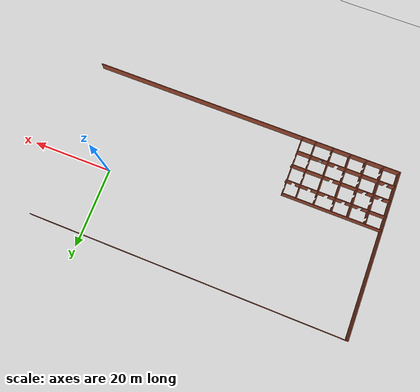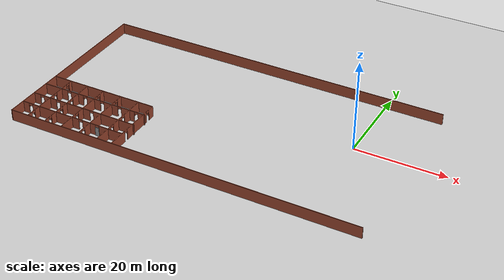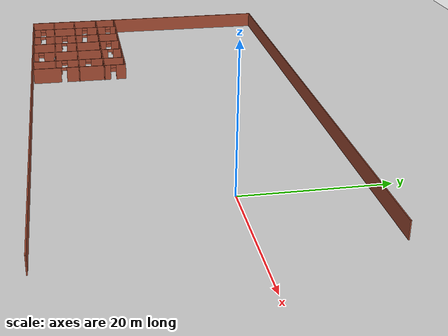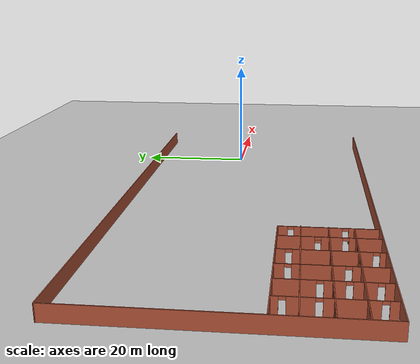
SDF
<sdf version="1.6">
 <world name="default">
  <model name="ground_plane">
   <static>1</static>
   <link name="link">
    <collision name="collision">
     <geometry><plane><normal>0 0 1</normal><size>100 100</size></plane></geometry>
     <surface>
      <contact><collide_bitmask>65535</collide_bitmask></contact>
      <friction><ode><mu>100</mu><mu2>50</mu2></ode></friction>
     </surface>
    </collision>
    <visual name="visual">
     <cast_shadows>0</cast_shadows>
     <geometry><plane><normal>0 0 1</normal><size>100 100</size></plane></geometry>
     <material>
      <script><uri>file://media/materials/scripts/gazebo.material</uri><name>Gazebo/Grey</name></script>
     </material>
    </visual>
   </link>
  </model>
  <model name="bigHouse">
   <pose>-26.8831 -3.8622 0 0 -0 0</pose>
   <link name="Door_24">
    <collision name="Door_24_Collision">
     <geometry><box><size>0.9 0.17 2</size></box></geometry>
     <pose>0 0 1 0 -0 0</pose>
    </collision>
    <visual name="Door_24_Visual">
     <pose>0 0 1 0 -0 0</pose>
     <geometry><box><size>0.9 0.17 2</size></box></geometry>
     <material>
      <script><uri>file://media/materials/scripts/gazebo.material</uri><name>Gazebo/Grey</name></script>
     </material>
    </visual>
    <pose>-20.6544 -17.2138 0 0 -0 0</pose>
   </link>
   <link name="Wall_0">
    <collision name="Wall_0_Collision">
     <geometry><box><size>42 0.15 2.5</size></box></geometry>
     <pose>0 0 1.25 0 -0 0</pose>
    </collision>
    <visual name="Wall_0_Visual">
     <pose>0 0 1.25 0 -0 0</pose>
     <geometry><box><size>42 0.15 2.5</size></box></geometry>
     <material>
      <script><uri>file://media/materials/scripts/gazebo.material</uri><name>Gazebo/Bricks</name></script>
      <ambient>1 1 1 1</ambient>
     </material>
     <meta><layer>0</layer></meta>
    </visual>
    <pose>-39.425 -0.000117 0 0 0 -1.5708</pose>
   </link>
   <link name="Wall_1">
    <collision name="Wall_1_Collision">
     <geometry><box><size>79 0.15 2.5</size></box></geometry>
     <pose>0 0 1.25 0 -0 0</pose>
    </collision>
    <visual name="Wall_1_Visual">
     <pose>0 0 1.25 0 -0 0</pose>
     <geometry><box><size>79 0.15 2.5</size></box></geometry>
     <material>
      <script><uri>file://media/materials/scripts/gazebo.material</uri><name>Gazebo/Bricks</name></script>
      <ambient>1 1 1 1</ambient>
     </material>
     <meta><layer>0</layer></meta>
    </visual>
    <pose>1e-06 -20.9251 0 0 -0 0</pose>
   </link>
   <link name="Wall_23">
    <collision name="Wall_23_Collision">
     <geometry><box><size>24.75 0.15 2.5</size></box></geometry>
     <pose>0 0 1.25 0 -0 0</pose>
    </collision>
    <visual name="Wall_23_Visual">
     <pose>0 0 1.25 0 -0 0</pose>
     <geometry><box><size>24.75 0.15 2.5</size></box></geometry>
     <material>
      <script><uri>file://media/materials/scripts/gazebo.material</uri><name>Gazebo/Bricks</name></script>
      <ambient>1 1 1 1</ambient>
     </material>
     <meta><layer>0</layer></meta>
    </visual>
    <pose>-26.9069 -5.76164 0 0 -0 0</pose>
   </link>
   <link name="Wall_24">
    <pose>-14.6069 -13.1866 0 0 0 -1.5708</pose>
    <visual name="Wall_24_Visual_0">
     <pose>-6.69597 0 1.25 0 -0 0</pose>
     <geometry><box><size>1.60807 0.15 2.5</size></box></geometry>
     <material>
      <script><uri>file://media/materials/scripts/gazebo.material</uri><name>Gazebo/Bricks</name></script>
      <ambient>1 1 1 1</ambient>
     </material>
     <meta><layer>0</layer></meta>
    </visual>
    <collision name="Wall_24_Collision_0">
     <geometry><box><size>1.60807 0.15 2.5</size></box></geometry>
     <pose>-6.69597 0 1.25 0 -0 0</pose>
    </collision>
    <visual name="Wall_24_Visual_1">
     <pose>-1.42211 0 1.25 0 -0 0</pose>
     <geometry><box><size>7.13964 0.15 2.5</size></box></geometry>
     <material>
      <script><uri>file://media/materials/scripts/gazebo.material</uri><name>Gazebo/Bricks</name></script>
      <ambient>1 1 1 1</ambient>
     </material>
     <meta><layer>0</layer></meta>
    </visual>
    <collision name="Wall_24_Collision_1">
     <geometry><box><size>7.13964 0.15 2.5</size></box></geometry>
     <pose>-1.42211 0 1.25 0 -0 0</pose>
    </collision>
    <visual name="Wall_24_Visual_2">
     <pose>5.27386 0 1.25 0 -0 0</pose>
     <geometry><box><size>4.45229 0.15 2.5</size></box></geometry>
     <material>
      <script><uri>file://media/materials/scripts/gazebo.material</uri><name>Gazebo/Bricks</name></script>
      <ambient>1 1 1 1</ambient>
     </material>
     <meta><layer>0</layer></meta>
    </visual>
    <collision name="Wall_24_Collision_2">
     <geometry><box><size>4.45229 0.15 2.5</size></box></geometry>
     <pose>5.27386 0 1.25 0 -0 0</pose>
    </collision>
    <visual name="Wall_24_Visual_3">
     <pose>-5.44193 0 2.25 0 -0 0</pose>
     <geometry><box><size>0.9 0.15 0.5</size></box></geometry>
     <material>
      <script><uri>file://media/materials/scripts/gazebo.material</uri><name>Gazebo/Bricks</name></script>
      <ambient>1 1 1 1</ambient>
     </material>
     <meta><layer>0</layer></meta>
    </visual>
    <collision name="Wall_24_Collision_3">
     <geometry><box><size>0.9 0.15 0.5</size></box></geometry>
     <pose>-5.44193 0 2.25 0 -0 0</pose>
    </collision>
    <visual name="Wall_24_Visual_4">
     <pose>2.59771 0 2.25 0 -0 0</pose>
     <geometry><box><size>0.9 0.15 0.5</size></box></geometry>
     <material>
      <script><uri>file://media/materials/scripts/gazebo.material</uri><name>Gazebo/Bricks</name></script>
      <ambient>1 1 1 1</ambient>
     </material>
     <meta><layer>0</layer></meta>
    </visual>
    <collision name="Wall_24_Collision_4">
     <geometry><box><size>0.9 0.15 0.5</size></box></geometry>
     <pose>2.59771 0 2.25 0 -0 0</pose>
    </collision>
   </link>
   <link name="Wall_26">
    <pose>-35.2751 -13.2008 0 0 0 -1.5708</pose>
    <visual name="Wall_26_Visual_0">
     <pose>-6.97508 0 1.25 0 -0 0</pose>
     <geometry><box><size>1.04984 0.15 2.5</size></box></geometry>
     <material>
      <script><uri>file://media/materials/scripts/gazebo.material</uri><name>Gazebo/Bricks</name></script>
      <ambient>1 1 1 1</ambient>
     </material>
     <meta><layer>0</layer></meta>
    </visual>
    <collision name="Wall_26_Collision_0">
     <geometry><box><size>1.04984 0.15 2.5</size></box></geometry>
     <pose>-6.97508 0 1.25 0 -0 0</pose>
    </collision>
    <visual name="Wall_26_Visual_1">
     <pose>-3.83887 0 1.25 0 -0 0</pose>
     <geometry><box><size>3.42259 0.15 2.5</size></box></geometry>
     <material>
      <script><uri>file://media/materials/scripts/gazebo.material</uri><name>Gazebo/Bricks</name></script>
      <ambient>1 1 1 1</ambient>
     </material>
     <meta><layer>0</layer></meta>
    </visual>
    <collision name="Wall_26_Collision_1">
     <geometry><box><size>3.42259 0.15 2.5</size></box></geometry>
     <pose>-3.83887 0 1.25 0 -0 0</pose>
    </collision>
    <visual name="Wall_26_Visual_2">
     <pose>2.12345 0 1.25 0 -0 0</pose>
     <geometry><box><size>6.70206 0.15 2.5</size></box></geometry>
     <material>
      <script><uri>file://media/materials/scripts/gazebo.material</uri><name>Gazebo/Bricks</name></script>
      <ambient>1 1 1 1</ambient>
     </material>
     <meta><layer>0</layer></meta>
    </visual>
    <collision name="Wall_26_Collision_2">
     <geometry><box><size>6.70206 0.15 2.5</size></box></geometry>
     <pose>2.12345 0 1.25 0 -0 0</pose>
    </collision>
    <visual name="Wall_26_Visual_3">
     <pose>6.93724 0 1.25 0 -0 0</pose>
     <geometry><box><size>1.12552 0.15 2.5</size></box></geometry>
     <material>
      <script><uri>file://media/materials/scripts/gazebo.material</uri><name>Gazebo/Bricks</name></script>
      <ambient>1 1 1 1</ambient>
     </material>
     <meta><layer>0</layer></meta>
    </visual>
    <collision name="Wall_26_Collision_3">
     <geometry><box><size>1.12552 0.15 2.5</size></box></geometry>
     <pose>6.93724 0 1.25 0 -0 0</pose>
    </collision>
    <visual name="Wall_26_Visual_4">
     <pose>-6.00016 0 2.25 0 -0 0</pose>
     <geometry><box><size>0.9 0.15 0.5</size></box></geometry>
     <material>
      <script><uri>file://media/materials/scripts/gazebo.material</uri><name>Gazebo/Bricks</name></script>
      <ambient>1 1 1 1</ambient>
     </material>
     <meta><layer>0</layer></meta>
    </visual>
    <collision name="Wall_26_Collision_4">
     <geometry><box><size>0.9 0.15 0.5</size></box></geometry>
     <pose>-6.00016 0 2.25 0 -0 0</pose>
    </collision>
    <visual name="Wall_26_Visual_5">
     <pose>-1.67757 0 2.25 0 -0 0</pose>
     <geometry><box><size>0.9 0.15 0.5</size></box></geometry>
     <material>
      <script><uri>file://media/materials/scripts/gazebo.material</uri><name>Gazebo/Bricks</name></script>
      <ambient>1 1 1 1</ambient>
     </material>
     <meta><layer>0</layer></meta>
    </visual>
    <collision name="Wall_26_Collision_5">
     <geometry><box><size>0.9 0.15 0.5</size></box></geometry>
     <pose>-1.67757 0 2.25 0 -0 0</pose>
    </collision>
    <visual name="Wall_26_Visual_6">
     <pose>5.92448 0 2.25 0 -0 0</pose>
     <geometry><box><size>0.9 0.15 0.5</size></box></geometry>
     <material>
      <script><uri>file://media/materials/scripts/gazebo.material</uri><name>Gazebo/Bricks</name></script>
      <ambient>1 1 1 1</ambient>
     </material>
     <meta><layer>0</layer></meta>
    </visual>
    <collision name="Wall_26_Collision_6">
     <geometry><box><size>0.9 0.15 0.5</size></box></geometry>
     <pose>5.92448 0 2.25 0 -0 0</pose>
    </collision>
   </link>
   <link name="Wall_28">
    <pose>-31.0091 -13.2008 0 0 0 -1.5708</pose>
    <visual name="Wall_28_Visual_0">
     <pose>-4.72576 0 1.25 0 -0 0</pose>
     <geometry><box><size>5.54849 0.15 2.5</size></box></geometry>
     <material>
      <script><uri>file://media/materials/scripts/gazebo.material</uri><name>Gazebo/Bricks</name></script>
      <ambient>1 1 1 1</ambient>
     </material>
     <meta><layer>0</layer></meta>
    </visual>
    <collision name="Wall_28_Collision_0">
     <geometry><box><size>5.54849 0.15 2.5</size></box></geometry>
     <pose>-4.72576 0 1.25 0 -0 0</pose>
    </collision>
    <visual name="Wall_28_Visual_1">
     <pose>0.299389 0 1.25 0 -0 0</pose>
     <geometry><box><size>2.70181 0.15 2.5</size></box></geometry>
     <material>
      <script><uri>file://media/materials/scripts/gazebo.material</uri><name>Gazebo/Bricks</name></script>
      <ambient>1 1 1 1</ambient>
     </material>
     <meta><layer>0</layer></meta>
    </visual>
    <collision name="Wall_28_Collision_1">
     <geometry><box><size>2.70181 0.15 2.5</size></box></geometry>
     <pose>0.299389 0 1.25 0 -0 0</pose>
    </collision>
    <visual name="Wall_28_Visual_2">
     <pose>4.01239 0 1.25 0 -0 0</pose>
     <geometry><box><size>2.92419 0.15 2.5</size></box></geometry>
     <material>
      <script><uri>file://media/materials/scripts/gazebo.material</uri><name>Gazebo/Bricks</name></script>
      <ambient>1 1 1 1</ambient>
     </material>
     <meta><layer>0</layer></meta>
    </visual>
    <collision name="Wall_28_Collision_2">
     <geometry><box><size>2.92419 0.15 2.5</size></box></geometry>
     <pose>4.01239 0 1.25 0 -0 0</pose>
    </collision>
    <visual name="Wall_28_Visual_3">
     <pose>6.93724 0 1.25 0 -0 0</pose>
     <geometry><box><size>1.12552 0.15 2.5</size></box></geometry>
     <material>
      <script><uri>file://media/materials/scripts/gazebo.material</uri><name>Gazebo/Bricks</name></script>
      <ambient>1 1 1 1</ambient>
     </material>
     <meta><layer>0</layer></meta>
    </visual>
    <collision name="Wall_28_Collision_3">
     <geometry><box><size>1.12552 0.15 2.5</size></box></geometry>
     <pose>6.93724 0 1.25 0 -0 0</pose>
    </collision>
    <visual name="Wall_28_Visual_4">
     <pose>-1.50151 0 2.25 0 -0 0</pose>
     <geometry><box><size>0.9 0.15 0.5</size></box></geometry>
     <material>
      <script><uri>file://media/materials/scripts/gazebo.material</uri><name>Gazebo/Bricks</name></script>
      <ambient>1 1 1 1</ambient>
     </material>
     <meta><layer>0</layer></meta>
    </visual>
    <collision name="Wall_28_Collision_4">
     <geometry><box><size>0.9 0.15 0.5</size></box></geometry>
     <pose>-1.50151 0 2.25 0 -0 0</pose>
    </collision>
    <visual name="Wall_28_Visual_5">
     <pose>2.10029 0 2.25 0 -0 0</pose>
     <geometry><box><size>0.9 0.15 0.5</size></box></geometry>
     <material>
      <script><uri>file://media/materials/scripts/gazebo.material</uri><name>Gazebo/Bricks</name></script>
      <ambient>1 1 1 1</ambient>
     </material>
     <meta><layer>0</layer></meta>
    </visual>
    <collision name="Wall_28_Collision_5">
     <geometry><box><size>0.9 0.15 0.5</size></box></geometry>
     <pose>2.10029 0 2.25 0 -0 0</pose>
    </collision>
    <visual name="Wall_28_Visual_6">
     <pose>5.92448 0 2.25 0 -0 0</pose>
     <geometry><box><size>0.9 0.15 0.5</size></box></geometry>
     <material>
      <script><uri>file://media/materials/scripts/gazebo.material</uri><name>Gazebo/Bricks</name></script>
      <ambient>1 1 1 1</ambient>
     </material>
     <meta><layer>0</layer></meta>
    </visual>
    <collision name="Wall_28_Collision_6">
     <geometry><box><size>0.9 0.15 0.5</size></box></geometry>
     <pose>5.92448 0 2.25 0 -0 0</pose>
    </collision>
   </link>
   <link name="Wall_3">
    <collision name="Wall_3_Collision">
     <geometry><box><size>79.0004 0.15 2.5</size></box></geometry>
     <pose>0 0 1.25 0 -0 0</pose>
    </collision>
    <visual name="Wall_3_Visual">
     <pose>0 0 1.25 0 -0 0</pose>
     <geometry><box><size>79.0004 0.15 2.5</size></box></geometry>
     <material>
      <script><uri>file://media/materials/scripts/gazebo.material</uri><name>Gazebo/Bricks</name></script>
      <ambient>1 1 1 1</ambient>
     </material>
     <meta><layer>0</layer></meta>
    </visual>
    <pose>1e-06 20.7999 0 0 -0 3.13842</pose>
   </link>
   <link name="Wall_30">
    <pose>-26.9073 -13.2008 0 0 0 -1.5708</pose>
    <visual name="Wall_30_Visual_0">
     <pose>-6.75741 0 1.25 0 -0 0</pose>
     <geometry><box><size>1.48519 0.15 2.5</size></box></geometry>
     <material>
      <script><uri>file://media/materials/scripts/gazebo.material</uri><name>Gazebo/Bricks</name></script>
      <ambient>1 1 1 1</ambient>
     </material>
     <meta><layer>0</layer></meta>
    </visual>
    <collision name="Wall_30_Collision_0">
     <geometry><box><size>1.48519 0.15 2.5</size></box></geometry>
     <pose>-6.75741 0 1.25 0 -0 0</pose>
    </collision>
    <visual name="Wall_30_Visual_1">
     <pose>-1.64929 0 1.25 0 -0 0</pose>
     <geometry><box><size>6.93105 0.15 2.5</size></box></geometry>
     <material>
      <script><uri>file://media/materials/scripts/gazebo.material</uri><name>Gazebo/Bricks</name></script>
      <ambient>1 1 1 1</ambient>
     </material>
     <meta><layer>0</layer></meta>
    </visual>
    <collision name="Wall_30_Collision_1">
     <geometry><box><size>6.93105 0.15 2.5</size></box></geometry>
     <pose>-1.64929 0 1.25 0 -0 0</pose>
    </collision>
    <visual name="Wall_30_Visual_2">
     <pose>5.10812 0 1.25 0 -0 0</pose>
     <geometry><box><size>4.78376 0.15 2.5</size></box></geometry>
     <material>
      <script><uri>file://media/materials/scripts/gazebo.material</uri><name>Gazebo/Bricks</name></script>
      <ambient>1 1 1 1</ambient>
     </material>
     <meta><layer>0</layer></meta>
    </visual>
    <collision name="Wall_30_Collision_2">
     <geometry><box><size>4.78376 0.15 2.5</size></box></geometry>
     <pose>5.10812 0 1.25 0 -0 0</pose>
    </collision>
    <visual name="Wall_30_Visual_3">
     <pose>-5.56481 0 2.25 0 -0 0</pose>
     <geometry><box><size>0.9 0.15 0.5</size></box></geometry>
     <material>
      <script><uri>file://media/materials/scripts/gazebo.material</uri><name>Gazebo/Bricks</name></script>
      <ambient>1 1 1 1</ambient>
     </material>
     <meta><layer>0</layer></meta>
    </visual>
    <collision name="Wall_30_Collision_3">
     <geometry><box><size>0.9 0.15 0.5</size></box></geometry>
     <pose>-5.56481 0 2.25 0 -0 0</pose>
    </collision>
    <visual name="Wall_30_Visual_4">
     <pose>2.26623 0 2.25 0 -0 0</pose>
     <geometry><box><size>0.9 0.15 0.5</size></box></geometry>
     <material>
      <script><uri>file://media/materials/scripts/gazebo.material</uri><name>Gazebo/Bricks</name></script>
      <ambient>1 1 1 1</ambient>
     </material>
     <meta><layer>0</layer></meta>
    </visual>
    <collision name="Wall_30_Collision_4">
     <geometry><box><size>0.9 0.15 0.5</size></box></geometry>
     <pose>2.26623 0 2.25 0 -0 0</pose>
    </collision>
   </link>
   <link name="Wall_32">
    <pose>-22.4773 -13.2008 0 0 0 -1.5708</pose>
    <visual name="Wall_32_Visual_0">
     <pose>-6.75741 0 1.25 0 -0 0</pose>
     <geometry><box><size>1.48519 0.15 2.5</size></box></geometry>
     <material>
      <script><uri>file://media/materials/scripts/gazebo.material</uri><name>Gazebo/Bricks</name></script>
      <ambient>1 1 1 1</ambient>
     </material>
     <meta><layer>0</layer></meta>
    </visual>
    <collision name="Wall_32_Collision_0">
     <geometry><box><size>1.48519 0.15 2.5</size></box></geometry>
     <pose>-6.75741 0 1.25 0 -0 0</pose>
    </collision>
    <visual name="Wall_32_Visual_1">
     <pose>0.342029 0 1.25 0 -0 0</pose>
     <geometry><box><size>10.9137 0.15 2.5</size></box></geometry>
     <material>
      <script><uri>file://media/materials/scripts/gazebo.material</uri><name>Gazebo/Bricks</name></script>
      <ambient>1 1 1 1</ambient>
     </material>
     <meta><layer>0</layer></meta>
    </visual>
    <collision name="Wall_32_Collision_1">
     <geometry><box><size>10.9137 0.15 2.5</size></box></geometry>
     <pose>0.342029 0 1.25 0 -0 0</pose>
    </collision>
    <visual name="Wall_32_Visual_2">
     <pose>7.09943 0 1.25 0 -0 0</pose>
     <geometry><box><size>0.801131 0.15 2.5</size></box></geometry>
     <material>
      <script><uri>file://media/materials/scripts/gazebo.material</uri><name>Gazebo/Bricks</name></script>
      <ambient>1 1 1 1</ambient>
     </material>
     <meta><layer>0</layer></meta>
    </visual>
    <collision name="Wall_32_Collision_2">
     <geometry><box><size>0.801131 0.15 2.5</size></box></geometry>
     <pose>7.09943 0 1.25 0 -0 0</pose>
    </collision>
    <visual name="Wall_32_Visual_3">
     <pose>-5.56481 0 2.25 0 -0 0</pose>
     <geometry><box><size>0.9 0.15 0.5</size></box></geometry>
     <material>
      <script><uri>file://media/materials/scripts/gazebo.material</uri><name>Gazebo/Bricks</name></script>
      <ambient>1 1 1 1</ambient>
     </material>
     <meta><layer>0</layer></meta>
    </visual>
    <collision name="Wall_32_Collision_3">
     <geometry><box><size>0.9 0.15 0.5</size></box></geometry>
     <pose>-5.56481 0 2.25 0 -0 0</pose>
    </collision>
    <visual name="Wall_32_Visual_4">
     <pose>6.24887 0 2.25 0 -0 0</pose>
     <geometry><box><size>0.9 0.15 0.5</size></box></geometry>
     <material>
      <script><uri>file://media/materials/scripts/gazebo.material</uri><name>Gazebo/Bricks</name></script>
      <ambient>1 1 1 1</ambient>
     </material>
     <meta><layer>0</layer></meta>
    </visual>
    <collision name="Wall_32_Collision_4">
     <geometry><box><size>0.9 0.15 0.5</size></box></geometry>
     <pose>6.24887 0 2.25 0 -0 0</pose>
    </collision>
   </link>
   <link name="Wall_34">
    <pose>-18.0473 -13.2008 0 0 0 -1.5708</pose>
    <visual name="Wall_34_Visual_0">
     <pose>-4.73416 0 1.25 0 -0 0</pose>
     <geometry><box><size>5.53168 0.15 2.5</size></box></geometry>
     <material>
      <script><uri>file://media/materials/scripts/gazebo.material</uri><name>Gazebo/Bricks</name></script>
      <ambient>1 1 1 1</ambient>
     </material>
     <meta><layer>0</layer></meta>
    </visual>
    <collision name="Wall_34_Collision_0">
     <geometry><box><size>5.53168 0.15 2.5</size></box></geometry>
     <pose>-4.73416 0 1.25 0 -0 0</pose>
    </collision>
    <visual name="Wall_34_Visual_1">
     <pose>0.450568 0 1.25 0 -0 0</pose>
     <geometry><box><size>3.03778 0.15 2.5</size></box></geometry>
     <material>
      <script><uri>file://media/materials/scripts/gazebo.material</uri><name>Gazebo/Bricks</name></script>
      <ambient>1 1 1 1</ambient>
     </material>
     <meta><layer>0</layer></meta>
    </visual>
    <collision name="Wall_34_Collision_1">
     <geometry><box><size>3.03778 0.15 2.5</size></box></geometry>
     <pose>0.450568 0 1.25 0 -0 0</pose>
    </collision>
    <visual name="Wall_34_Visual_2">
     <pose>5.18473 0 1.25 0 -0 0</pose>
     <geometry><box><size>4.63054 0.15 2.5</size></box></geometry>
     <material>
      <script><uri>file://media/materials/scripts/gazebo.material</uri><name>Gazebo/Bricks</name></script>
      <ambient>1 1 1 1</ambient>
     </material>
     <meta><layer>0</layer></meta>
    </visual>
    <collision name="Wall_34_Collision_2">
     <geometry><box><size>4.63054 0.15 2.5</size></box></geometry>
     <pose>5.18473 0 1.25 0 -0 0</pose>
    </collision>
    <visual name="Wall_34_Visual_3">
     <pose>-1.51832 0 2.25 0 -0 0</pose>
     <geometry><box><size>0.9 0.15 0.5</size></box></geometry>
     <material>
      <script><uri>file://media/materials/scripts/gazebo.material</uri><name>Gazebo/Bricks</name></script>
      <ambient>1 1 1 1</ambient>
     </material>
     <meta><layer>0</layer></meta>
    </visual>
    <collision name="Wall_34_Collision_3">
     <geometry><box><size>0.9 0.15 0.5</size></box></geometry>
     <pose>-1.51832 0 2.25 0 -0 0</pose>
    </collision>
    <visual name="Wall_34_Visual_4">
     <pose>2.41946 0 2.25 0 -0 0</pose>
     <geometry><box><size>0.9 0.15 0.5</size></box></geometry>
     <material>
      <script><uri>file://media/materials/scripts/gazebo.material</uri><name>Gazebo/Bricks</name></script>
      <ambient>1 1 1 1</ambient>
     </material>
     <meta><layer>0</layer></meta>
    </visual>
    <collision name="Wall_34_Collision_4">
     <geometry><box><size>0.9 0.15 0.5</size></box></geometry>
     <pose>2.41946 0 2.25 0 -0 0</pose>
    </collision>
   </link>
   <link name="Wall_36">
    <pose>-26.7879 -9.22138 0 0 -0 0</pose>
    <visual name="Wall_36_Visual_0">
     <pose>-9.72087 0 1.25 0 -0 0</pose>
     <geometry><box><size>5.55825 0.15 2.5</size></box></geometry>
     <material>
      <script><uri>file://media/materials/scripts/gazebo.material</uri><name>Gazebo/Bricks</name></script>
      <ambient>1 1 1 1</ambient>
     </material>
     <meta><layer>0</layer></meta>
    </visual>
    <collision name="Wall_36_Collision_0">
     <geometry><box><size>5.55825 0.15 2.5</size></box></geometry>
     <pose>-9.72087 0 1.25 0 -0 0</pose>
    </collision>
    <visual name="Wall_36_Visual_1">
     <pose>-4.4601 0 1.25 0 -0 0</pose>
     <geometry><box><size>3.1633 0.15 2.5</size></box></geometry>
     <material>
      <script><uri>file://media/materials/scripts/gazebo.material</uri><name>Gazebo/Bricks</name></script>
      <ambient>1 1 1 1</ambient>
     </material>
     <meta><layer>0</layer></meta>
    </visual>
    <collision name="Wall_36_Collision_1">
     <geometry><box><size>3.1633 0.15 2.5</size></box></geometry>
     <pose>-4.4601 0 1.25 0 -0 0</pose>
    </collision>
    <visual name="Wall_36_Visual_2">
     <pose>-0.251686 0 1.25 0 -0 0</pose>
     <geometry><box><size>3.45353 0.15 2.5</size></box></geometry>
     <material>
      <script><uri>file://media/materials/scripts/gazebo.material</uri><name>Gazebo/Bricks</name></script>
      <ambient>1 1 1 1</ambient>
     </material>
     <meta><layer>0</layer></meta>
    </visual>
    <collision name="Wall_36_Collision_2">
     <geometry><box><size>3.45353 0.15 2.5</size></box></geometry>
     <pose>-0.251686 0 1.25 0 -0 0</pose>
    </collision>
    <visual name="Wall_36_Visual_3">
     <pose>4.10184 0 1.25 0 -0 0</pose>
     <geometry><box><size>3.45353 0.15 2.5</size></box></geometry>
     <material>
      <script><uri>file://media/materials/scripts/gazebo.material</uri><name>Gazebo/Bricks</name></script>
      <ambient>1 1 1 1</ambient>
     </material>
     <meta><layer>0</layer></meta>
    </visual>
    <collision name="Wall_36_Collision_3">
     <geometry><box><size>3.45353 0.15 2.5</size></box></geometry>
     <pose>4.10184 0 1.25 0 -0 0</pose>
    </collision>
    <visual name="Wall_36_Visual_4">
     <pose>8.32997 0 1.25 0 -0 0</pose>
     <geometry><box><size>3.20272 0.15 2.5</size></box></geometry>
     <material>
      <script><uri>file://media/materials/scripts/gazebo.material</uri><name>Gazebo/Bricks</name></script>
      <ambient>1 1 1 1</ambient>
     </material>
     <meta><layer>0</layer></meta>
    </visual>
    <collision name="Wall_36_Collision_4">
     <geometry><box><size>3.20272 0.15 2.5</size></box></geometry>
     <pose>8.32997 0 1.25 0 -0 0</pose>
    </collision>
    <visual name="Wall_36_Visual_5">
     <pose>11.6657 0 1.25 0 -0 0</pose>
     <geometry><box><size>1.66867 0.15 2.5</size></box></geometry>
     <material>
      <script><uri>file://media/materials/scripts/gazebo.material</uri><name>Gazebo/Bricks</name></script>
      <ambient>1 1 1 1</ambient>
     </material>
     <meta><layer>0</layer></meta>
    </visual>
    <collision name="Wall_36_Collision_5">
     <geometry><box><size>1.66867 0.15 2.5</size></box></geometry>
     <pose>11.6657 0 1.25 0 -0 0</pose>
    </collision>
    <visual name="Wall_36_Visual_6">
     <pose>-6.49175 0 2.25 0 -0 0</pose>
     <geometry><box><size>0.9 0.15 0.5</size></box></geometry>
     <material>
      <script><uri>file://media/materials/scripts/gazebo.material</uri><name>Gazebo/Bricks</name></script>
      <ambient>1 1 1 1</ambient>
     </material>
     <meta><layer>0</layer></meta>
    </visual>
    <collision name="Wall_36_Collision_6">
     <geometry><box><size>0.9 0.15 0.5</size></box></geometry>
     <pose>-6.49175 0 2.25 0 -0 0</pose>
    </collision>
    <visual name="Wall_36_Visual_7">
     <pose>-2.42845 0 2.25 0 -0 0</pose>
     <geometry><box><size>0.9 0.15 0.5</size></box></geometry>
     <material>
      <script><uri>file://media/materials/scripts/gazebo.material</uri><name>Gazebo/Bricks</name></script>
      <ambient>1 1 1 1</ambient>
     </material>
     <meta><layer>0</layer></meta>
    </visual>
    <collision name="Wall_36_Collision_7">
     <geometry><box><size>0.9 0.15 0.5</size></box></geometry>
     <pose>-2.42845 0 2.25 0 -0 0</pose>
    </collision>
    <visual name="Wall_36_Visual_8">
     <pose>1.92508 0 2.25 0 -0 0</pose>
     <geometry><box><size>0.9 0.15 0.5</size></box></geometry>
     <material>
      <script><uri>file://media/materials/scripts/gazebo.material</uri><name>Gazebo/Bricks</name></script>
      <ambient>1 1 1 1</ambient>
     </material>
     <meta><layer>0</layer></meta>
    </visual>
    <collision name="Wall_36_Collision_8">
     <geometry><box><size>0.9 0.15 0.5</size></box></geometry>
     <pose>1.92508 0 2.25 0 -0 0</pose>
    </collision>
    <visual name="Wall_36_Visual_9">
     <pose>6.27861 0 2.25 0 -0 0</pose>
     <geometry><box><size>0.9 0.15 0.5</size></box></geometry>
     <material>
      <script><uri>file://media/materials/scripts/gazebo.material</uri><name>Gazebo/Bricks</name></script>
      <ambient>1 1 1 1</ambient>
     </material>
     <meta><layer>0</layer></meta>
    </visual>
    <collision name="Wall_36_Collision_9">
     <geometry><box><size>0.9 0.15 0.5</size></box></geometry>
     <pose>6.27861 0 2.25 0 -0 0</pose>
    </collision>
    <visual name="Wall_36_Visual_10">
     <pose>10.3813 0 2.25 0 -0 0</pose>
     <geometry><box><size>0.9 0.15 0.5</size></box></geometry>
     <material>
      <script><uri>file://media/materials/scripts/gazebo.material</uri><name>Gazebo/Bricks</name></script>
      <ambient>1 1 1 1</ambient>
     </material>
     <meta><layer>0</layer></meta>
    </visual>
    <collision name="Wall_36_Collision_10">
     <geometry><box><size>0.9 0.15 0.5</size></box></geometry>
     <pose>10.3813 0 2.25 0 -0 0</pose>
    </collision>
   </link>
   <link name="Wall_38">
    <pose>-26.7879 -13.3232 0 0 -0 0</pose>
    <visual name="Wall_38_Visual_0">
     <pose>-11.7241 0 1.25 0 -0 0</pose>
     <geometry><box><size>1.5517 0.15 2.5</size></box></geometry>
     <material>
      <script><uri>file://media/materials/scripts/gazebo.material</uri><name>Gazebo/Bricks</name></script>
      <ambient>1 1 1 1</ambient>
     </material>
     <meta><layer>0</layer></meta>
    </visual>
    <collision name="Wall_38_Collision_0">
     <geometry><box><size>1.5517 0.15 2.5</size></box></geometry>
     <pose>-11.7241 0 1.25 0 -0 0</pose>
    </collision>
    <visual name="Wall_38_Visual_1">
     <pose>-8.45744 0 1.25 0 -0 0</pose>
     <geometry><box><size>3.18171 0.15 2.5</size></box></geometry>
     <material>
      <script><uri>file://media/materials/scripts/gazebo.material</uri><name>Gazebo/Bricks</name></script>
      <ambient>1 1 1 1</ambient>
     </material>
     <meta><layer>0</layer></meta>
    </visual>
    <collision name="Wall_38_Collision_1">
     <geometry><box><size>3.18171 0.15 2.5</size></box></geometry>
     <pose>-8.45744 0 1.25 0 -0 0</pose>
    </collision>
    <visual name="Wall_38_Visual_2">
     <pose>-2.1732 0 1.25 0 -0 0</pose>
     <geometry><box><size>7.58678 0.15 2.5</size></box></geometry>
     <material>
      <script><uri>file://media/materials/scripts/gazebo.material</uri><name>Gazebo/Bricks</name></script>
      <ambient>1 1 1 1</ambient>
     </material>
     <meta><layer>0</layer></meta>
    </visual>
    <collision name="Wall_38_Collision_2">
     <geometry><box><size>7.58678 0.15 2.5</size></box></geometry>
     <pose>-2.1732 0 1.25 0 -0 0</pose>
    </collision>
    <visual name="Wall_38_Visual_3">
     <pose>7.5101 0 1.25 0 -0 0</pose>
     <geometry><box><size>9.97981 0.15 2.5</size></box></geometry>
     <material>
      <script><uri>file://media/materials/scripts/gazebo.material</uri><name>Gazebo/Bricks</name></script>
      <ambient>1 1 1 1</ambient>
     </material>
     <meta><layer>0</layer></meta>
    </visual>
    <collision name="Wall_38_Collision_3">
     <geometry><box><size>9.97981 0.15 2.5</size></box></geometry>
     <pose>7.5101 0 1.25 0 -0 0</pose>
    </collision>
    <visual name="Wall_38_Visual_4">
     <pose>-10.4983 0 2.25 0 -0 0</pose>
     <geometry><box><size>0.9 0.15 0.5</size></box></geometry>
     <material>
      <script><uri>file://media/materials/scripts/gazebo.material</uri><name>Gazebo/Bricks</name></script>
      <ambient>1 1 1 1</ambient>
     </material>
     <meta><layer>0</layer></meta>
    </visual>
    <collision name="Wall_38_Collision_4">
     <geometry><box><size>0.9 0.15 0.5</size></box></geometry>
     <pose>-10.4983 0 2.25 0 -0 0</pose>
    </collision>
    <visual name="Wall_38_Visual_5">
     <pose>-6.41659 0 2.25 0 -0 0</pose>
     <geometry><box><size>0.9 0.15 0.5</size></box></geometry>
     <material>
      <script><uri>file://media/materials/scripts/gazebo.material</uri><name>Gazebo/Bricks</name></script>
      <ambient>1 1 1 1</ambient>
     </material>
     <meta><layer>0</layer></meta>
    </visual>
    <collision name="Wall_38_Collision_5">
     <geometry><box><size>0.9 0.15 0.5</size></box></geometry>
     <pose>-6.41659 0 2.25 0 -0 0</pose>
    </collision>
    <visual name="Wall_38_Visual_6">
     <pose>2.07019 0 2.25 0 -0 0</pose>
     <geometry><box><size>0.9 0.15 0.5</size></box></geometry>
     <material>
      <script><uri>file://media/materials/scripts/gazebo.material</uri><name>Gazebo/Bricks</name></script>
      <ambient>1 1 1 1</ambient>
     </material>
     <meta><layer>0</layer></meta>
    </visual>
    <collision name="Wall_38_Collision_6">
     <geometry><box><size>0.9 0.15 0.5</size></box></geometry>
     <pose>2.07019 0 2.25 0 -0 0</pose>
    </collision>
   </link>
   <link name="Wall_40">
    <pose>-26.9129 -17.0969 0 0 -0 0</pose>
    <visual name="Wall_40_Visual_0">
     <pose>-11.6663 0 1.25 0 -0 0</pose>
     <geometry><box><size>1.41733 0.15 2.5</size></box></geometry>
     <material>
      <script><uri>file://media/materials/scripts/gazebo.material</uri><name>Gazebo/Bricks</name></script>
      <ambient>1 1 1 1</ambient>
     </material>
     <meta><layer>0</layer></meta>
    </visual>
    <collision name="Wall_40_Collision_0">
     <geometry><box><size>1.41733 0.15 2.5</size></box></geometry>
     <pose>-11.6663 0 1.25 0 -0 0</pose>
    </collision>
    <visual name="Wall_40_Visual_1">
     <pose>-4.16808 0 1.25 0 -0 0</pose>
     <geometry><box><size>11.7792 0.15 2.5</size></box></geometry>
     <material>
      <script><uri>file://media/materials/scripts/gazebo.material</uri><name>Gazebo/Bricks</name></script>
      <ambient>1 1 1 1</ambient>
     </material>
     <meta><layer>0</layer></meta>
    </visual>
    <collision name="Wall_40_Collision_1">
     <geometry><box><size>11.7792 0.15 2.5</size></box></geometry>
     <pose>-4.16808 0 1.25 0 -0 0</pose>
    </collision>
    <visual name="Wall_40_Visual_2">
     <pose>4.215 0 1.25 0 -0 0</pose>
     <geometry><box><size>3.18698 0.15 2.5</size></box></geometry>
     <material>
      <script><uri>file://media/materials/scripts/gazebo.material</uri><name>Gazebo/Bricks</name></script>
      <ambient>1 1 1 1</ambient>
     </material>
     <meta><layer>0</layer></meta>
    </visual>
    <collision name="Wall_40_Collision_2">
     <geometry><box><size>3.18698 0.15 2.5</size></box></geometry>
     <pose>4.215 0 1.25 0 -0 0</pose>
    </collision>
    <visual name="Wall_40_Visual_3">
     <pose>9.54175 0 1.25 0 -0 0</pose>
     <geometry><box><size>5.66651 0.15 2.5</size></box></geometry>
     <material>
      <script><uri>file://media/materials/scripts/gazebo.material</uri><name>Gazebo/Bricks</name></script>
      <ambient>1 1 1 1</ambient>
     </material>
     <meta><layer>0</layer></meta>
    </visual>
    <collision name="Wall_40_Collision_3">
     <geometry><box><size>5.66651 0.15 2.5</size></box></geometry>
     <pose>9.54175 0 1.25 0 -0 0</pose>
    </collision>
    <visual name="Wall_40_Visual_4">
     <pose>-10.5077 0 2.25 0 -0 0</pose>
     <geometry><box><size>0.9 0.15 0.5</size></box></geometry>
     <material>
      <script><uri>file://media/materials/scripts/gazebo.material</uri><name>Gazebo/Bricks</name></script>
      <ambient>1 1 1 1</ambient>
     </material>
     <meta><layer>0</layer></meta>
    </visual>
    <collision name="Wall_40_Collision_4">
     <geometry><box><size>0.9 0.15 0.5</size></box></geometry>
     <pose>-10.5077 0 2.25 0 -0 0</pose>
    </collision>
    <visual name="Wall_40_Visual_5">
     <pose>2.17151 0 2.25 0 -0 0</pose>
     <geometry><box><size>0.9 0.15 0.5</size></box></geometry>
     <material>
      <script><uri>file://media/materials/scripts/gazebo.material</uri><name>Gazebo/Bricks</name></script>
      <ambient>1 1 1 1</ambient>
     </material>
     <meta><layer>0</layer></meta>
    </visual>
    <collision name="Wall_40_Collision_5">
     <geometry><box><size>0.9 0.15 0.5</size></box></geometry>
     <pose>2.17151 0 2.25 0 -0 0</pose>
    </collision>
    <visual name="Wall_40_Visual_6">
     <pose>6.25849 0 2.25 0 -0 0</pose>
     <geometry><box><size>0.9 0.15 0.5</size></box></geometry>
     <material>
      <script><uri>file://media/materials/scripts/gazebo.material</uri><name>Gazebo/Bricks</name></script>
      <ambient>1 1 1 1</ambient>
     </material>
     <meta><layer>0</layer></meta>
    </visual>
    <collision name="Wall_40_Collision_6">
     <geometry><box><size>0.9 0.15 0.5</size></box></geometry>
     <pose>6.25849 0 2.25 0 -0 0</pose>
    </collision>
   </link>
   <static>1</static>
  </model>
 </world>
</sdf>
